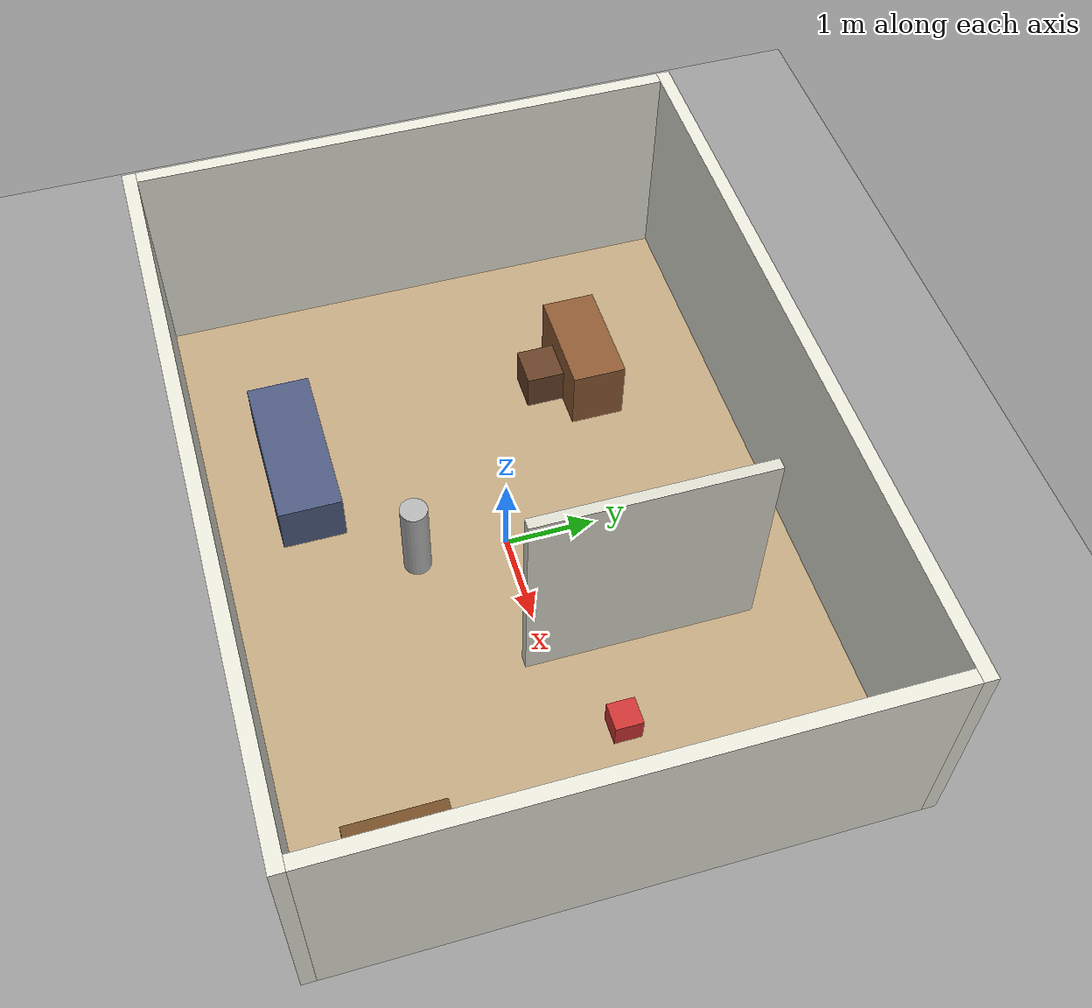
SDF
<?xml version="1.0" ?>
<sdf version="1.8">
  <world name="room_world">

    <!-- ── System Plugins ───────────────────────────────────────── -->
    <plugin filename="gz-sim-physics-system" name="gz::sim::systems::Physics"/>
    <plugin filename="gz-sim-scene-broadcaster-system" name="gz::sim::systems::SceneBroadcaster"/>
    <plugin filename="gz-sim-user-commands-system" name="gz::sim::systems::UserCommands"/>
    <plugin filename="gz-sim-sensors-system" name="gz::sim::systems::Sensors">
      <render_engine>ogre2</render_engine>
    </plugin>
    <plugin filename="gz-sim-contact-system" name="gz::sim::systems::Contact"/>

    <!-- ── Lighting ─────────────────────────────────────────────── -->
    <light type="directional" name="sun">
      <cast_shadows>true</cast_shadows>
      <pose>0 0 10 0 0 0</pose>
      <diffuse>0.9 0.9 0.9 1</diffuse>
      <specular>0.3 0.3 0.3 1</specular>
      <direction>-0.5 0.3 -0.9</direction>
    </light>

    <light type="point" name="ceiling_light_1">
      <pose>0 0 2.8 0 0 0</pose>
      <diffuse>0.8 0.8 0.75 1</diffuse>
      <attenuation>
        <range>12</range>
        <constant>0.3</constant>
        <linear>0.05</linear>
        <quadratic>0.01</quadratic>
      </attenuation>
    </light>

    <!-- ── Ground Plane ─────────────────────────────────────────── -->
    <model name="ground_plane">
      <static>true</static>
      <link name="link">
        <collision name="collision">
          <geometry><plane><normal>0 0 1</normal><size>100 100</size></plane></geometry>
        </collision>
        <visual name="visual">
          <geometry><plane><normal>0 0 1</normal><size>100 100</size></plane></geometry>
          <material>
            <ambient>0.6 0.6 0.6 1</ambient>
            <diffuse>0.6 0.6 0.6 1</diffuse>
          </material>
        </visual>
      </link>
    </model>

    <!-- ── Room Floor (6m x 8m) ─────────────────────────────────── -->
    <model name="floor">
      <static>true</static>
      <pose>0 0 0.005 0 0 0</pose>
      <link name="link">
        <visual name="visual">
          <geometry><box><size>8 6 0.01</size></box></geometry>
          <material>
            <ambient>0.75 0.65 0.5 1</ambient>
            <diffuse>0.75 0.65 0.5 1</diffuse>
          </material>
        </visual>
      </link>
    </model>

    <!-- ── Walls (thickness=0.15, height=2.5) ───────────────────── -->
    <!-- North wall -->
    <model name="wall_north">
      <static>true</static>
      <pose>0 3.075 1.25 0 0 0</pose>
      <link name="link">
        <collision name="collision">
          <geometry><box><size>8.3 0.15 2.5</size></box></geometry>
        </collision>
        <visual name="visual">
          <geometry><box><size>8.3 0.15 2.5</size></box></geometry>
          <material><ambient>0.9 0.9 0.85 1</ambient><diffuse>0.9 0.9 0.85 1</diffuse></material>
        </visual>
      </link>
    </model>

    <!-- South wall -->
    <model name="wall_south">
      <static>true</static>
      <pose>0 -3.075 1.25 0 0 0</pose>
      <link name="link">
        <collision name="collision">
          <geometry><box><size>8.3 0.15 2.5</size></box></geometry>
        </collision>
        <visual name="visual">
          <geometry><box><size>8.3 0.15 2.5</size></box></geometry>
          <material><ambient>0.9 0.9 0.85 1</ambient><diffuse>0.9 0.9 0.85 1</diffuse></material>
        </visual>
      </link>
    </model>

    <!-- East wall -->
    <model name="wall_east">
      <static>true</static>
      <pose>4.075 0 1.25 0 0 0</pose>
      <link name="link">
        <collision name="collision">
          <geometry><box><size>0.15 6.0 2.5</size></box></geometry>
        </collision>
        <visual name="visual">
          <geometry><box><size>0.15 6.0 2.5</size></box></geometry>
          <material><ambient>0.9 0.9 0.85 1</ambient><diffuse>0.9 0.9 0.85 1</diffuse></material>
        </visual>
      </link>
    </model>

    <!-- West wall -->
    <model name="wall_west">
      <static>true</static>
      <pose>-4.075 0 1.25 0 0 0</pose>
      <link name="link">
        <collision name="collision">
          <geometry><box><size>0.15 6.0 2.5</size></box></geometry>
        </collision>
        <visual name="visual">
          <geometry><box><size>0.15 6.0 2.5</size></box></geometry>
          <material><ambient>0.9 0.9 0.85 1</ambient><diffuse>0.9 0.9 0.85 1</diffuse></material>
        </visual>
      </link>
    </model>

    <!-- ── Internal wall / partition ────────────────────────────── -->
    <model name="partition_1">
      <static>true</static>
      <pose>1.5 1.0 1.25 0 0 0</pose>
      <link name="link">
        <collision name="collision">
          <geometry><box><size>0.12 2.5 2.5</size></box></geometry>
        </collision>
        <visual name="visual">
          <geometry><box><size>0.12 2.5 2.5</size></box></geometry>
          <material><ambient>0.85 0.85 0.8 1</ambient><diffuse>0.85 0.85 0.8 1</diffuse></material>
        </visual>
      </link>
    </model>

    <!-- ── Furniture / Obstacles ─────────────────────────────────── -->
    <!-- Table -->
    <model name="table">
      <static>true</static>
      <pose>-2.0 1.5 0.375 0 0 0</pose>
      <link name="link">
        <collision name="collision">
          <geometry><box><size>1.2 0.6 0.75</size></box></geometry>
        </collision>
        <visual name="visual">
          <geometry><box><size>1.2 0.6 0.75</size></box></geometry>
          <material><ambient>0.55 0.35 0.2 1</ambient><diffuse>0.55 0.35 0.2 1</diffuse></material>
        </visual>
      </link>
    </model>

    <!-- Chair 1 -->
    <model name="chair_1">
      <static>true</static>
      <pose>-2.0 1.0 0.225 0 0 0</pose>
      <link name="link">
        <collision name="collision">
          <geometry><box><size>0.45 0.45 0.45</size></box></geometry>
        </collision>
        <visual name="visual">
          <geometry><box><size>0.45 0.45 0.45</size></box></geometry>
          <material><ambient>0.4 0.25 0.15 1</ambient><diffuse>0.4 0.25 0.15 1</diffuse></material>
        </visual>
      </link>
    </model>

    <!-- Bookshelf -->
    <model name="bookshelf">
      <static>true</static>
      <pose>3.5 -2.0 0.6 0 0 0</pose>
      <link name="link">
        <collision name="collision">
          <geometry><box><size>0.4 1.0 1.2</size></box></geometry>
        </collision>
        <visual name="visual">
          <geometry><box><size>0.4 1.0 1.2</size></box></geometry>
          <material><ambient>0.45 0.3 0.15 1</ambient><diffuse>0.45 0.3 0.15 1</diffuse></material>
        </visual>
      </link>
    </model>

    <!-- Sofa -->
    <model name="sofa">
      <static>true</static>
      <pose>-1.5 -2.0 0.3 0 0 0</pose>
      <link name="link">
        <collision name="collision">
          <geometry><box><size>1.8 0.7 0.6</size></box></geometry>
        </collision>
        <visual name="visual">
          <geometry><box><size>1.8 0.7 0.6</size></box></geometry>
          <material><ambient>0.3 0.35 0.5 1</ambient><diffuse>0.3 0.35 0.5 1</diffuse></material>
        </visual>
      </link>
    </model>

    <!-- Small box obstacle -->
    <model name="box_obstacle">
      <static>true</static>
      <pose>2.5 0.5 0.15 0 0 0</pose>
      <link name="link">
        <collision name="collision">
          <geometry><box><size>0.3 0.3 0.3</size></box></geometry>
        </collision>
        <visual name="visual">
          <geometry><box><size>0.3 0.3 0.3</size></box></geometry>
          <material><ambient>0.8 0.2 0.2 1</ambient><diffuse>0.8 0.2 0.2 1</diffuse></material>
        </visual>
      </link>
    </model>

    <!-- Cylinder pillar -->
    <model name="pillar">
      <static>true</static>
      <pose>0 -1.0 0.5 0 0 0</pose>
      <link name="link">
        <collision name="collision">
          <geometry><cylinder><radius>0.15</radius><length>1.0</length></cylinder></geometry>
        </collision>
        <visual name="visual">
          <geometry><cylinder><radius>0.15</radius><length>1.0</length></cylinder></geometry>
          <material><ambient>0.7 0.7 0.7 1</ambient><diffuse>0.7 0.7 0.7 1</diffuse></material>
        </visual>
      </link>
    </model>

  </world>
</sdf>
